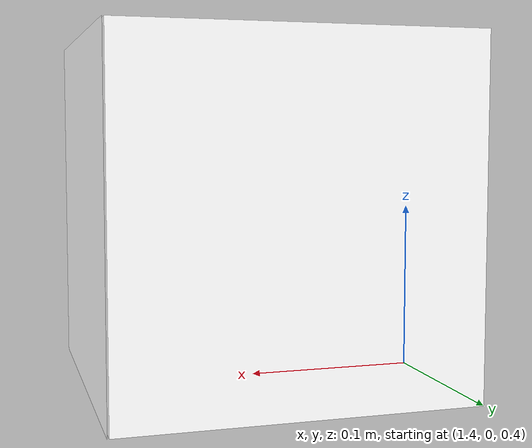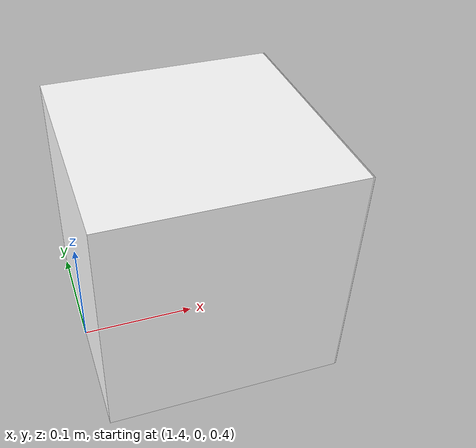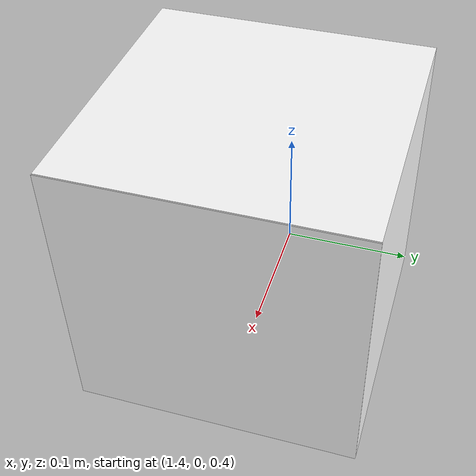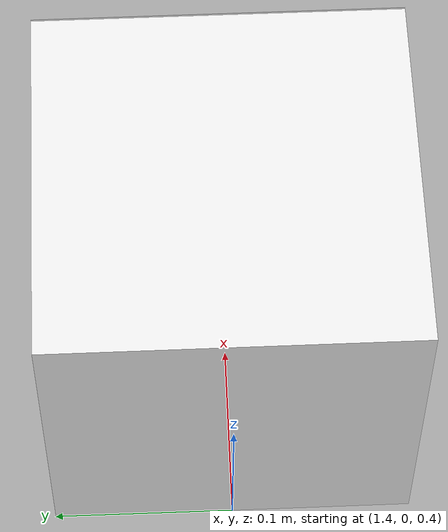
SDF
<?xml version="1.0"?>
<sdf version="1.9">
  <model name="cubo_aruco">
    <pose>1.5 0 0.5 0 0 0</pose>

    <link name="link">
      <kinematic>true</kinematic>

      <inertial>
        <mass>0.5</mass>
        <inertia>
          <ixx>0.00333</ixx>
          <iyy>0.00333</iyy>
          <izz>0.00333</izz>
          <ixy>0</ixy>
          <ixz>0</ixz>
          <iyz>0</iyz>
        </inertia>
      </inertial>

      <collision name="collision">
        <geometry>
          <box><size>0.2 0.2 0.2</size></box>
        </geometry>
      </collision>

      <!-- Cuerpo del cubo (5 caras visibles, color simple) -->
      <visual name="cuerpo">
        <geometry>
          <box><size>0.2 0.2 0.2</size></box>
        </geometry>
        <material>
          <ambient>1 1 1 1</ambient>
          <diffuse>1 1 1 1</diffuse>
          <specular>0.1 0.1 0.1 1</specular>
        </material>
      </visual>

      <!-- Cara frontal con el marcador ArUco, ligeramente
           desplazada hacia afuera para evitar z-fighting con "cuerpo" -->
      <visual name="cara_aruco">
        <pose>0.101 0 0 1.5708 0 1.5708</pose>
        <geometry>
          <plane><size>0.2 0.2</size></plane>
        </geometry>
        <material>
          <ambient>1 1 1 1</ambient>
          <diffuse>1 1 1 1</diffuse>
          <specular>0 0 0 1</specular>
          <pbr>
            <metal>
              <albedo_map>materials/textures/aruco_23.png</albedo_map>
              <roughness>1.0</roughness>
              <metalness>0.0</metalness>
            </metal>
          </pbr>
        </material>
      </visual>
    </link>

    <plugin filename="gz-sim-velocity-control-system"
            name="gz::sim::systems::VelocityControl">
      <topic>/cubo_aruco/cmd_vel</topic>
    </plugin>
  </model>
</sdf>
